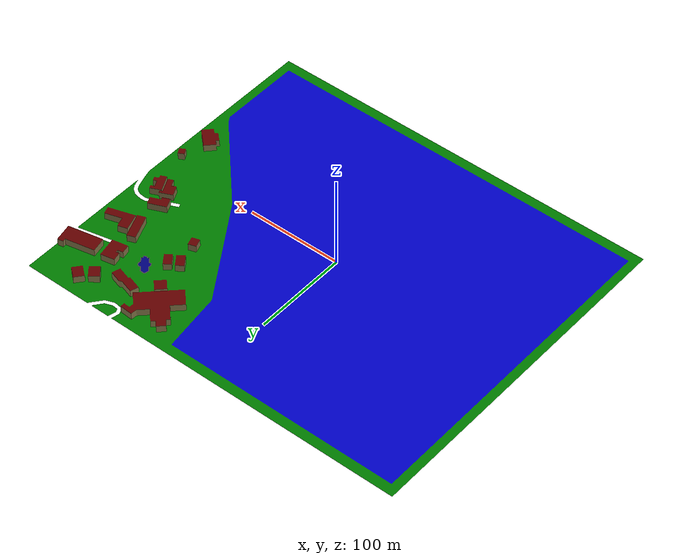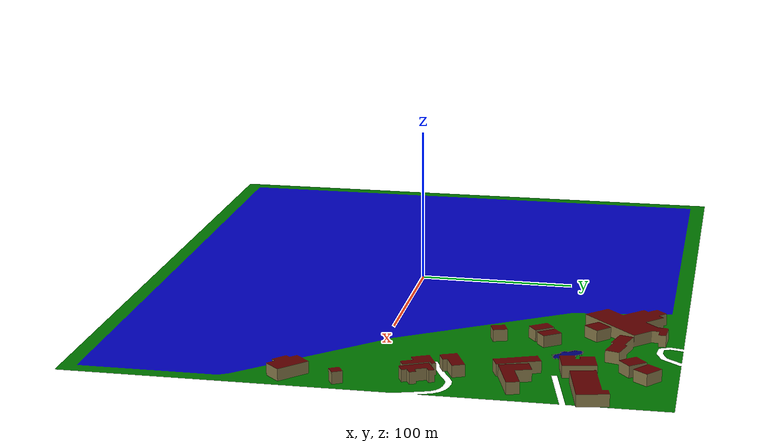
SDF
<?xml version="1.0"?>
<sdf version="1.4">
  <world name="default">
    <include>
      <uri>model://sun</uri>
    </include>
    <model name="bellairs">
      <pose>0 0 0  0 0 0</pose>
      <static>true</static>
      <link name="body">
      <collision name="collision">
          <geometry>
            <plane>
              <normal>0 0 1</normal>
              <size>500 500</size>
            </plane>
          </geometry>
        </collision>
        <visual name="visual">
          <geometry>
            <mesh><uri>bellairs.dae</uri></mesh>
          </geometry>
        </visual>
      </link>
    </model>
  </world>
</sdf>
